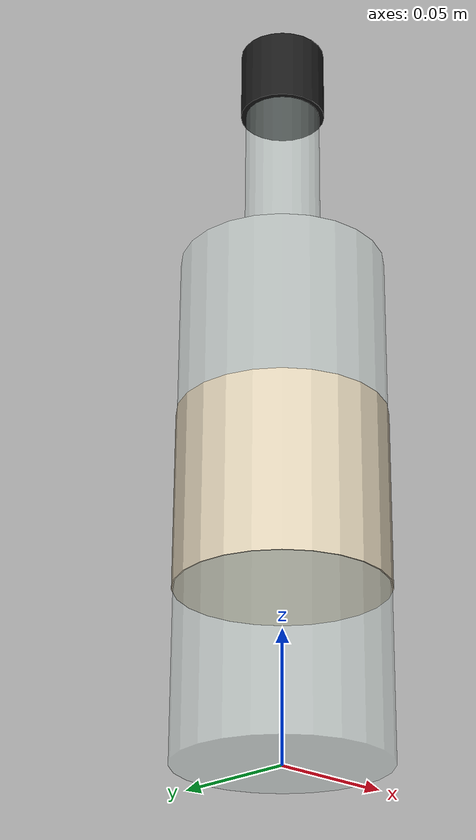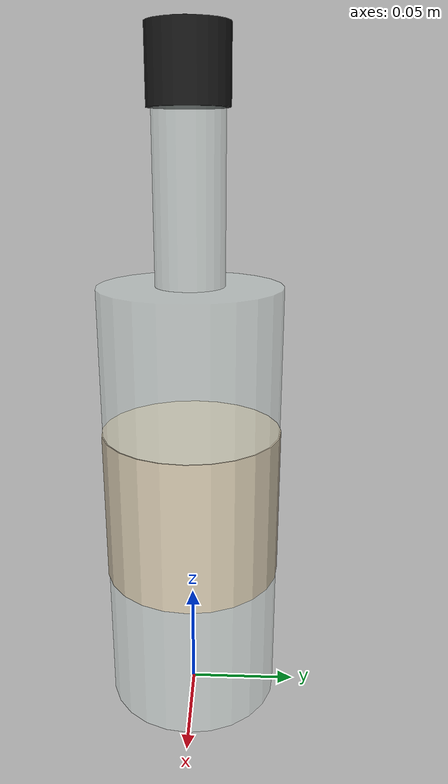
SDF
<?xml version="1.0" ?>
<!-- GENERATED by ros2_ws/src/bartender_gazebo/scripts/make_real_bar_bottles.py.
     Edit that script and re-run it; edits here are overwritten. -->
<sdf version="1.9">
  <model name="tenjaku_bottle">
    <link name="link">
      <inertial><pose>0 0 0.15 0 0 0</pose><mass>1.2</mass><inertia><ixx>0.009492</ixx><iyy>0.009492</iyy><izz>0.000984</izz><ixy>0</ixy><ixz>0</ixz><iyz>0</iyz></inertia></inertial>
      <velocity_decay><linear>0.05</linear><angular>0.30</angular></velocity_decay>
      <visual name="v0"><pose>0 0.0 0.1 0 0 0</pose><geometry><cylinder><radius>0.04</radius><length>0.2</length></cylinder></geometry><material><ambient>0.255 0.276 0.27 1</ambient><diffuse>0.85 0.92 0.9 0.35</diffuse><specular>0.6 0.6 0.6 1</specular></material><transparency>0.65</transparency></visual>
      <collision name="c0"><pose>0 0 0.1 0 0 0</pose><geometry><cylinder><radius>0.04</radius><length>0.2</length></cylinder></geometry><surface><friction><ode><mu>0.9</mu><mu2>0.9</mu2></ode></friction></surface></collision>
      <visual name="v1"><pose>0 0.0 0.1 0 0 0</pose><geometry><cylinder><radius>0.0405</radius><length>0.07</length></cylinder></geometry><material><ambient>0.255 0.24 0.21 1</ambient><diffuse>0.85 0.8 0.7 1</diffuse><specular>0.6 0.6 0.6 1</specular></material></visual>
      <visual name="v2"><pose>0 0.0 0.235 0 0 0</pose><geometry><cylinder><radius>0.015</radius><length>0.07</length></cylinder></geometry><material><ambient>0.255 0.276 0.27 1</ambient><diffuse>0.85 0.92 0.9 0.35</diffuse><specular>0.6 0.6 0.6 1</specular></material><transparency>0.65</transparency></visual>
      <collision name="c2"><pose>0 0 0.235 0 0 0</pose><geometry><cylinder><radius>0.015</radius><length>0.07</length></cylinder></geometry><surface><friction><ode><mu>0.9</mu><mu2>0.9</mu2></ode></friction></surface></collision>
      <visual name="v3"><pose>0 0.0 0.285 0 0 0</pose><geometry><cylinder><radius>0.017</radius><length>0.03</length></cylinder></geometry><material><ambient>0.03 0.03 0.03 1</ambient><diffuse>0.1 0.1 0.1 1</diffuse><specular>0.6 0.6 0.6 1</specular></material></visual>
    </link>
  </model>
</sdf>
